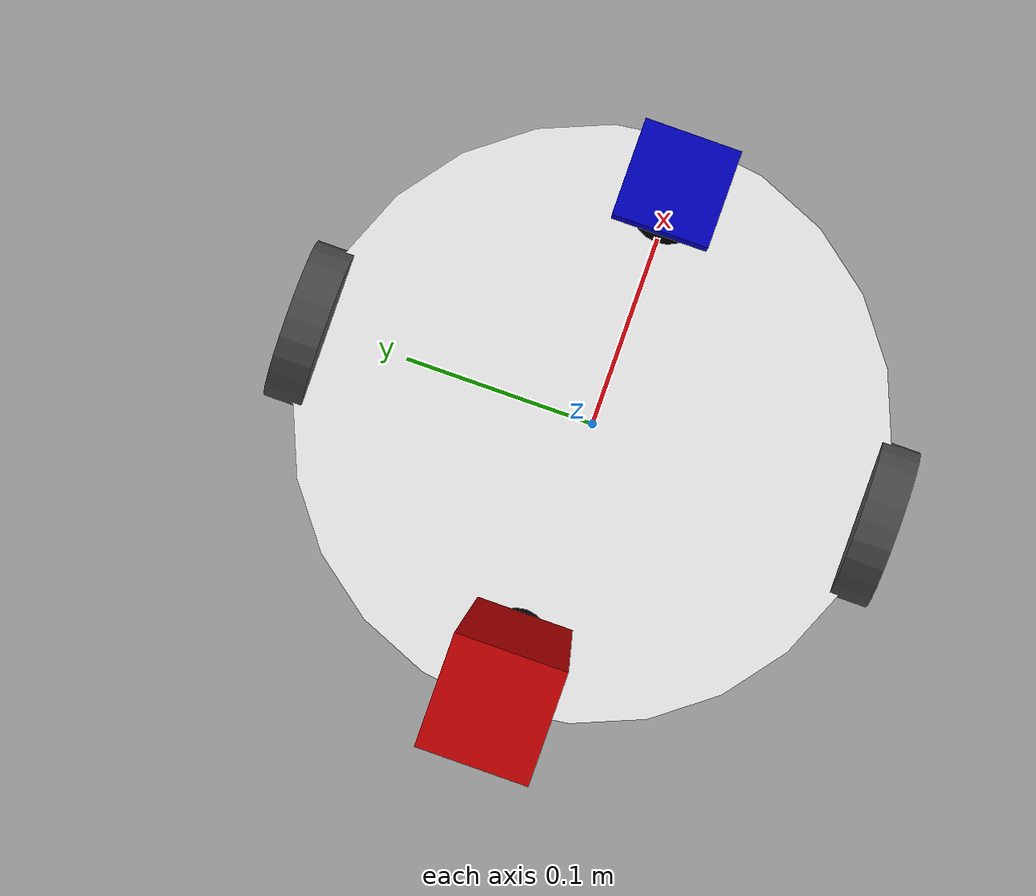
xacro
<?xml version="1.0"?>

<robot name="kamtoa_robot" xmlns:xacro="http://www.ros.org/wiki/xacro">

    <!-- Wheel file -->
    <xacro:include filename="$(find kamtoa_description)/urdf/shared_component/wheel.urdf.xacro" />
    <xacro:include filename="$(find kamtoa_description)/urdf/kamtoa_prototype/constant.xacro" />
    <xacro:include filename="$(find kamtoa_description)/urdf/kamtoa_prototype/material.xacro" />
    <xacro:include filename="$(find kamtoa_description)/urdf/shared_component/hokuyo.xacro" />
    <xacro:include filename="$(find kamtoa_description)/urdf/kamtoa_prototype/camera.xacro" />
    <xacro:include filename="$(find kamtoa_description)/urdf/kamtoa_prototype/diff_drive_plugin.xacro" />

    <!-- Base_Footprint (ground mark)  -->
    <link name="base_footprint">
    <inertial>
        <mass value="0.0001" />
        <origin xyz="0 0 0" />
        <inertia ixx="0.0001" ixy="0.0" ixz="0.0" iyy="0.0001" iyz="0.0" izz="0.0001" />
    </inertial>
    <visual>
        <origin xyz="0 0 0" rpy="0 0 0" />
        <geometry>
            <box size="0.001 0.001 0.001" />
        </geometry>
    </visual>
    </link>

    <joint name="base_footprint_joint" type="fixed">
        <origin xyz="0 0 ${wheel_radius - base_z_origin_to_wheel_origin}" rpy="0 0 0" />
        <parent link="base_footprint" />
        <child link="base_link" />
    </joint>

    <gazebo reference="base_footprint">
        <turnGravityOff>false</turnGravityOff>
    </gazebo>

    <!-- Base_Link (Action body/chassis of the robot) -->
    <link name="base_link">
    <inertial>
        <mass value="${base_mass}" />
        <origin xyz="0 0 0" />
        <!--The 3x3 rotational inertia matrix. -->
        <cylinder_inertia m="${base_mass}" r="${base_radius}" h="${base_height}" />
    </inertial>

    <visual>
        <origin xyz="0 0 0" rpy="0 0 0" />
        <geometry>
            <cylinder length="${base_height}" radius="${base_radius}" />
        </geometry>
        <material name="White" />
    </visual>

    <collision>
        <origin xyz="0 0 0" rpy="0 0 0 " />
        <geometry>
            <cylinder length="${base_height}" radius="${base_radius}" />
        </geometry>
    </collision>
    </link>
    <gazebo reference="base_link">
        <material>Gazebo/White</material>
        <turnGravityOff>false</turnGravityOff>
    </gazebo>

    <!-- Front Caster wheel  -->
    <link name="caster_front_link">
    <visual>
        <origin xyz="0 0.02 0" rpy="${M_PI/2} 0 0" />
        <geometry>
            <sphere radius="${caster_f_radius}" />
        </geometry>
        <material name="Black" />
    </visual>

    <collision>
        <geometry>
            <sphere radius="${caster_f_radius}" />
        </geometry>
        <origin xyz="0 0.02 0" rpy="${M_PI/2} 0 0" />

        <surface>
              <friction>
                <ode>
                  <mu>0</mu>
                  <mu2>0</mu2>
                  <slip1>1.0</slip1>
                  <slip2>1.0</slip2>
                </ode>
              </friction>
        </surface>

    </collision>
    <inertial>
        <mass value="${caster_f_mass}" />
        <origin xyz="0 0 0" />
        <inertia ixx="0.001" ixy="0.0" ixz="0.0" iyy="0.001" iyz="0.0" izz="0.001" />
    </inertial>

    </link>

    <joint name="caster_front_joint" type="fixed">
        <parent link="base_link" />
        <child link="caster_front_link" />
        <origin xyz="0.115 0.0 0.007" rpy="${-M_PI/2} 0 0" />
    </joint>

    <gazebo reference="caster_front_link">
        <turnGravityOff>false</turnGravityOff>
    </gazebo>

    <!-- Back Caster wheel  -->
    <link name="caster_back_link">
    <visual>
        <origin xyz="0.02 0.02 0 " rpy="${M_PI/2} 0 0" />
        <geometry>
            <sphere radius="${caster_b_radius}" />
        </geometry>
        <material name="Black" />
    </visual>

    <collision>
        <geometry>
            <sphere radius="${caster_b_radius}" />
        </geometry>
        <origin xyz="0 0.02 0 " rpy="${M_PI/2} 0 0" />

        <surface>
              <friction>
                <ode>
                  <mu>0</mu>
                  <mu2>0</mu2>
                  <slip1>1.0</slip1>
                  <slip2>1.0</slip2>
                </ode>
              </friction>
        </surface>

    </collision>
    <inertial>
        <mass value="${caster_b_mass}" />
        <origin xyz="0 0 0" />
        <inertia ixx="0.001" ixy="0.0" ixz="0.0" iyy="0.001" iyz="0.0" izz="0.001" />
    </inertial>
    </link>

    <joint name="caster_back_joint" type="fixed">
        <parent link="base_link" />
        <child link="caster_back_link" />
        <origin xyz="-0.135 0.0 0.009" rpy="${-M_PI/2} 0 0" />
    </joint>

    <gazebo reference="caster_back_link">
        <turnGravityOff>false</turnGravityOff>
    </gazebo>

    <!-- Wheel -->
    <wheel fb="front" lr="right" parent="base_link" translateX="0" translateY="0.5" flipY="1" />
    <wheel fb="front" lr="left" parent="base_link" translateX="0" translateY="-0.5" flipY="1" />
</robot>

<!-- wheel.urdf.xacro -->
<robot name="wheel" xmlns:xacro="http://www.ros.org/wiki/xacro">

  <!-- Wheels -->
  <xacro:property name="wheel_radius" value="0.041" />
  <xacro:property name="wheel_height" value="0.02" />
  <xacro:property name="wheel_mass" value="2.5" /> <!-- in kg-->

  <xacro:property name="base_x_origin_to_wheel_origin" value="0.25" />
  <xacro:property name="base_y_origin_to_wheel_origin" value="0.3" />
  <xacro:property name="base_z_origin_to_wheel_origin" value="0.0" />

  <xacro:macro name="cylinder_inertia" params="m r h">
    <inertia  ixx="${m*(3*r*r+h*h)/12}" ixy = "0" ixz = "0"
              iyy="${m*(3*r*r+h*h)/12}" iyz = "0"
              izz="${m*r*r/2}" />
  </xacro:macro>

  <xacro:macro name="wheel" params="fb lr parent translateX translateY flipY"> <!--fb : front, back ; lr: left, right -->
    <link name="${fb}_${lr}_wheel">
      <visual>
        <origin xyz="0 0 0" rpy="${flipY*M_PI/2} 0  0 " />
        <geometry>
          <cylinder length="${wheel_height}" radius="${wheel_radius}" />
        </geometry>
        <material name="DarkGray" />
      </visual>
      <collision>
        <origin xyz="0 0 0" rpy="${flipY*M_PI/2} 0 0 " />
        <geometry>
          <cylinder length="${wheel_height}" radius="${wheel_radius}" />
        </geometry>
      </collision>
      <inertial>
        <mass value="${wheel_mass}" />
        <origin xyz="0 0 0" />
        <cylinder_inertia  m="${wheel_mass}" r="${wheel_radius}" h="${wheel_height}" />
      </inertial>
    </link>

    <gazebo reference="${fb}_${lr}_wheel">
      <mu1 value="1.0"/>
      <mu2 value="1.0"/>
      <kp  value="10000000.0" />
      <kd  value="1.0" />
      <fdir1 value="1 0 0"/>
      <material>Gazebo/Grey</material>
      <turnGravityOff>false</turnGravityOff>
    </gazebo>

    <joint name="${fb}_${lr}_wheel_joint" type="continuous">
      <parent link="${parent}"/>
      <child link="${fb}_${lr}_wheel"/>
      <origin xyz="${translateX * base_x_origin_to_wheel_origin} ${translateY * base_y_origin_to_wheel_origin} ${base_z_origin_to_wheel_origin}" rpy="0 0 0" />
      <axis xyz="0 1 0" rpy="0  0" />
      <limit effort="100" velocity="100"/>
      <joint_properties damping="0.0" friction="0.0"/>
    </joint>

    <!-- Transmission is important to link the joints and the controller -->
    <transmission name="${fb}_${lr}_wheel_joint_trans">
      <type>transmission_interface/SimpleTransmission</type>
      <joint name="${fb}_${lr}_wheel_joint" />
      <actuator name="${fb}_${lr}_wheel_joint_motor">
        <hardwareInterface>EffortJointInterface</hardwareInterface>
        <mechanicalReduction>1</mechanicalReduction>
      </actuator>
    </transmission>

  </xacro:macro>
</robot>

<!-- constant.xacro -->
<robot name="kamtoa_robot" xmlns:xacro="http://www.ros.org/wiki/xacro">
    <!-- Constants (m-kg-s-radians unit system) -->
    <xacro:property name="M_PI" value="3.1415926535897931"/>
    <xacro:property name="M_PI_2" value="1.570796327"/>
    <xacro:property name="DEG_TO_RAD" value="0.017453293"/>

    <!-- Robot definitions  -->
    <xacro:property name="base_height" value="0.02"/>
    <xacro:property name="base_radius" value="0.15"/>
    <xacro:property name="base_mass" value="5.0"/>
    <!-- in kg-->
    <xacro:property name="caster_f_height" value="0.04"/>
    <xacro:property name="caster_f_radius" value="0.03"/>
    <xacro:property name="caster_f_mass" value="0.5"/>
    <!-- in kg-->
    <xacro:property name="caster_b_height" value="0.04"/>
    <xacro:property name="caster_b_radius" value="0.027"/>
    <xacro:property name="caster_b_mass" value="0.5"/>
    <!-- in kg-->

    <!-- Wheels -->
    <xacro:property name="wheel_mass" value="2.5"/>
    -->
    <!-- in kg-->
    <xacro:property name="base_x_origin_to_wheel_origin" value="0.25"/>
    <xacro:property name="base_y_origin_to_wheel_origin" value="0.3"/>
    <xacro:property name="base_z_origin_to_wheel_origin" value="0.0"/>

    <!-- Hokuyo Laser scanner -->
    <xacro:property name="hokuyo_size" value="0.05"/>

    <!-- Camera Properties -->
    <xacro:property name="cameraSize" value="0.05"/>
    <xacro:property name="cameraMass" value="0.1"/>

    <!-- Macro for calculating inertia of cylinder -->
    <xacro:macro name="cylinder_inertia" params="m r h">
        <inertia ixx="${m*(3*r*r+h*h)/12}" ixy="0" ixz="0" iyy="${m*(3*r*r+h*h)/12}" iyz="0" izz="${m*r*r/2}"/>
    </xacro:macro>

</robot>

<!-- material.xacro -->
<robot name="kamtoa_robot" xmlns:xacro="http://www.ros.org/wiki/xacro">

<!-- Definitions for colors -->

    <material name="Black">
        <color rgba="0.0 0.0 0.0 1.0" />
    </material>
    <material name="Red">
        <color rgba="0.8 0.0 0.0 1.0" />
    </material>
    <material name="White">
        <color rgba="1.0 1.0 1.0 1.0" />
    </material>
    <material name="Blue">
        <color rgba="0.0 0.0 0.8 1.0" />
    </material>
</robot>

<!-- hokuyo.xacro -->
<robot name="kamtoa_robot" xmlns:xacro="http://www.ros.org/wiki/xacro">

<!-- Hokuyo Sensors Model -->
    <link name="hokuyo_link">
    <visual>
        <origin xyz="0 0 0" rpy="0 0 0" />
        <geometry>
            <box size="${hokuyo_size} ${hokuyo_size} ${hokuyo_size}" />
        </geometry>
        <material name="Blue" />
    </visual>
    </link>

    <joint name="hokuyo_joint" type="fixed">
        <origin xyz="${base_radius - hokuyo_size/2} 0 ${base_height+hokuyo_size/4}" rpy="0 0 0" />
        <parent link="base_link" />
        <child link="hokuyo_link" />
    </joint>

    <gazebo reference="hokuyo_link">
        <material>Gazebo/Blue</material>
         <visualize>true</visualize>
        <turnGravityOff>false</turnGravityOff>
        <sensor type="ray" name="head_hokuyo_sensor">
            <pose>${hokuyo_size/2} 0 0 0 0 0</pose>
            <visualize>false</visualize>
            <update_rate>40</update_rate>
            <ray>
                <scan>
                    <horizontal>
                        <samples>360</samples>
                        <resolution>1</resolution>
                        <min_angle>-2</min_angle>
                        <max_angle>2</max_angle>
                    </horizontal>
                </scan>
                <range>
                    <min>0.10</min>
                    <max>6</max>
                    <resolution>0.001</resolution>
                </range>
                <noise>
                  <type>gaussian</type>
                  <mean>0.01</mean>
                  <stddev>0.015</stddev>
                </noise>
            </ray>
            <plugin name="gazebo_ros_head_hokuyo_controller" filename="libgazebo_ros_laser.so">
                <topicName>/scan</topicName>
                <frameName>hokuyo_link</frameName>
            </plugin>
        </sensor>
    </gazebo>
</robot>

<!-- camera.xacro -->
<robot name="kamtoa_robot" xmlns:xacro="http://www.ros.org/wiki/xacro">

    <link name="camera_link">
        <visual>
            <origin xyz="0 0 0" rpy="0 0 0"/>
            <geometry>
                <box size="${cameraSize} ${cameraSize} ${8*cameraSize}"/>
            </geometry>
            <material name="Red"/>
        </visual>
    </link>

    <joint name="camera_joint" type="fixed">
        <origin xyz="${- base_radius + cameraSize/2} 0 ${base_height+4*cameraSize}" rpy="0 0 0"/>
        <parent link="base_link"/>
        <child link="camera_link"/>
    </joint>

    <gazebo reference="camera_link">
        <material>Gazebo/Red</material>
        <turnGravityOff>false</turnGravityOff>
        <sensor type="camera" name="camera1">
            <update_rate>30.0</update_rate>
            <camera name="head">
                <horizontal_fov>1.3962634</horizontal_fov>
                <image>
                    <width>800</width>
                    <height>800</height>
                    <format>R8G8B8</format>
                </image>
                <clip>
                    <near>0.02</near>
                    <far>300</far>
                </clip>
            </camera>
            <plugin name="camera_controller" filename="libgazebo_ros_camera.so">
                <alwaysOn>true</alwaysOn>
                <updateRate>0.0</updateRate>
                <cameraName>kamtoa/camera_rgb</cameraName>
                <imageTopicName>kamtoa/camera/rgb</imageTopicName>
                <cameraInfoTopicName>kamtoa/camera/camera_info</cameraInfoTopicName>
                <frameName>camera_link</frameName>
                <hackBaseline>0.07</hackBaseline>
                <distortionK1>0.0</distortionK1>
                <distortionK2>0.0</distortionK2>
                <distortionK3>0.0</distortionK3>
                <distortionT1>0.0</distortionT1>
                <distortionT2>0.0</distortionT2>
            </plugin>
        </sensor>
    </gazebo>
</robot>
